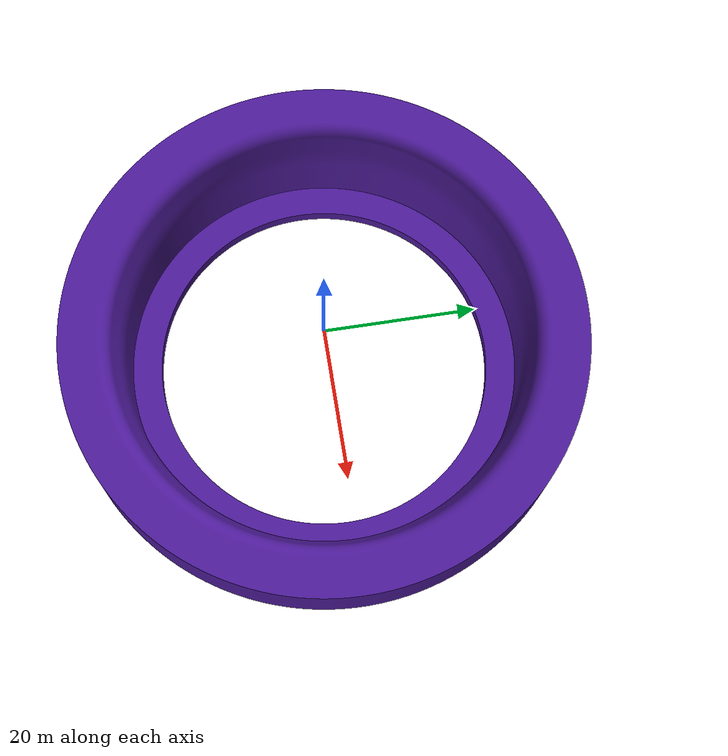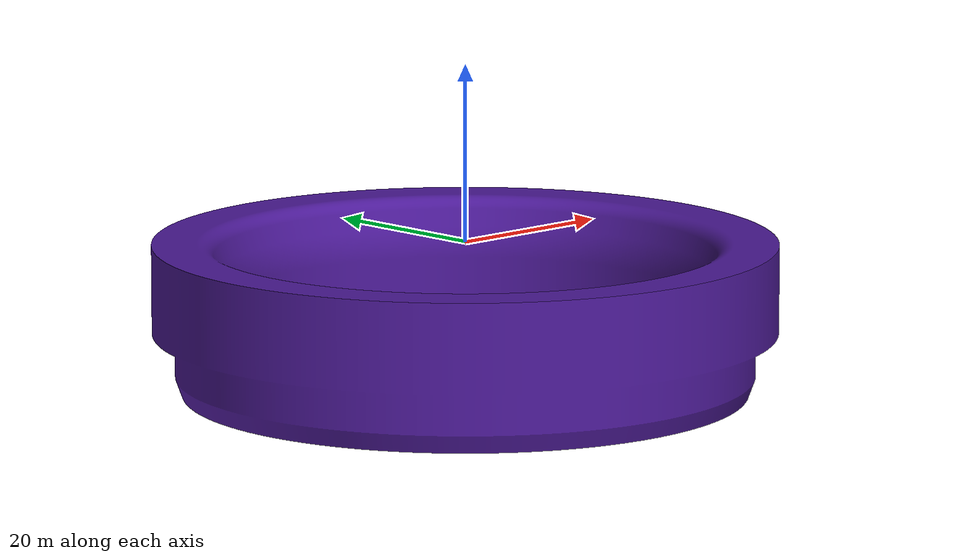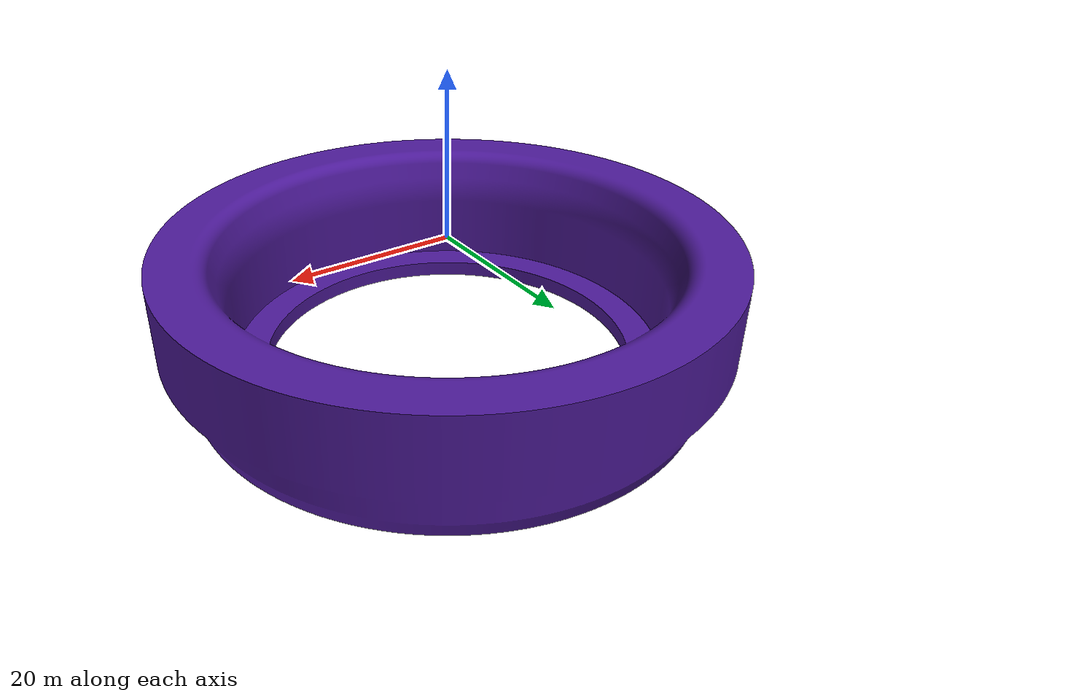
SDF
<?xml version='1.0'?>
<sdf version='1.7'>
  <model name='costruzione-1'>
    <model name='X1-Y1-Z2'>
      <static>0</static>
      <link name='link'>
        <pose>0 0 0 0 -0 0</pose>
        <inertial>
          <pose>0 0 -0.00064 0 -0 0</pose>
          <mass>7.975e-06</mass>
          <inertia>
            <ixx>3.1065e-09</ixx>
            <ixy>2.7e-15</ixy>
            <ixz>-2.403e-13</ixz>
            <iyy>3.1066e-09</iyy>
            <iyz>-2.21e-14</iyz>
            <izz>1.97979e-09</izz>
          </inertia>
        </inertial>
        <visual name='visual'>
          <geometry>
            <mesh>
              <uri>model://X1-Y1-Z2/meshes/X1-Y1-Z2.stl</uri>
            </mesh>
          </geometry>
          <material>
            <script>
              <uri>file://media/materials/scripts/gazebo.material</uri>
              <name>Gazebo/Indigo</name>
            </script>
          </material>
        </visual>
        <collision name='collision'>
          <geometry>
            <mesh>
              <uri>model://X1-Y1-Z2/meshes/X1-Y1-Z2.stl</uri>
            </mesh>
          </geometry>
          <max_contacts>10</max_contacts>
          <surface>
            <contact>
              <ode/>
            </contact>
            <bounce/>
            <friction>
              <torsional>
                <ode/>
              </torsional>
              <ode/>
            </friction>
          </surface>
        </collision>
        <self_collide>0</self_collide>
        <enable_wind>0</enable_wind>
        <kinematic>0</kinematic>
      </link>
      <pose>-0.062873 -0.018457 -0.028843 0 -0 0</pose>
    </model>
    <static>0</static>
    <allow_auto_disable>1</allow_auto_disable>
  </model>
</sdf>
